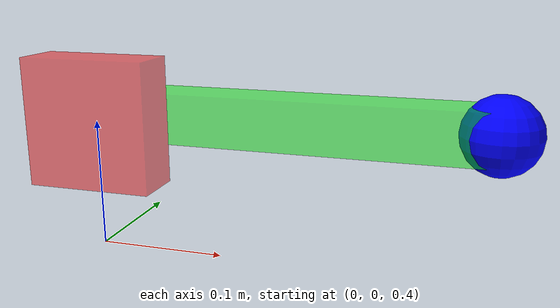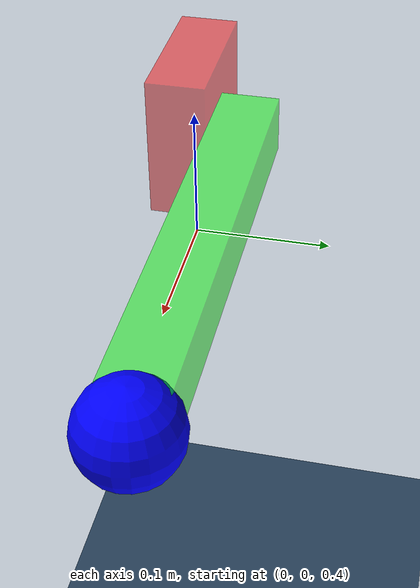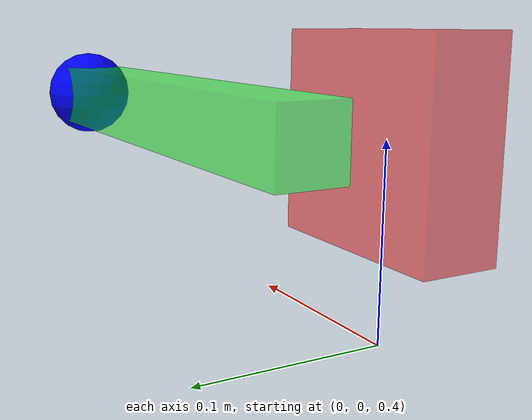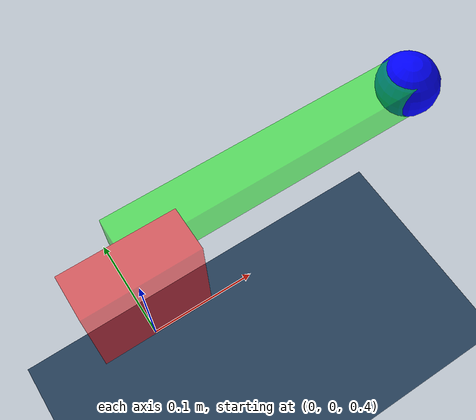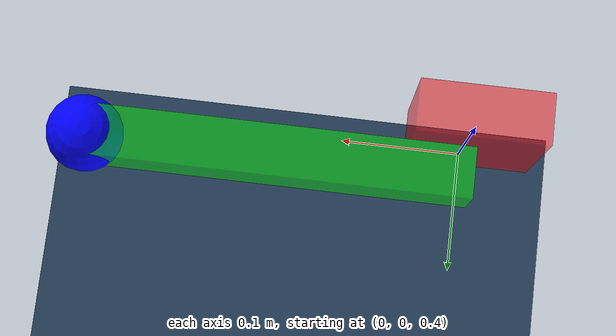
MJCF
<mujoco model="simple_sea_test">
  <compiler angle="radian"/>
  <option timestep="0.002"/>
  <visual>
    <headlight diffuse="0.6 0.6 0.6" ambient="0.3 0.3 0.3" specular="0 0 0"/>
    <rgba haze="0.15 0.25 0.35 1"/>
    <global azimuth="0" elevation="-20"/>
  </visual>
  <asset>
    <texture type="skybox" builtin="gradient" rgb1="0.3 0.5 0.7" rgb2="0 0 0" width="512" height="3072"/>
    <texture type="2d" name="groundplane" builtin="checker" mark="edge" rgb1="0.2 0.3 0.4" rgb2="0.1 0.2 0.3"
      markrgb="0.8 0.8 0.8" width="300" height="300"/>
    <material name="groundplane" texture="groundplane" texuniform="true" texrepeat="5 5" reflectance="0.2"/>
  </asset>
  <worldbody>
    <light pos="0 0 1.5" dir="0 0 -1" directional="true"/>
    <geom name="floor" size="0 0 0.05" type="plane" material="groundplane"/>
    <body name="motor_side" pos="0 0 0.5">
      <joint name="theta" type="hinge" axis="0 1 0" actuatorfrcrange="-6.28 6.28" damping="1.0" range="-6.28 6.28"/>
      <geom type="box" size="0.05 0.02 0.05" rgba="1 0 0 0.5"/>
      <body name="link_side" pos="0 0.04 0">
        <joint name="q" type="hinge" axis="0 1 0" stiffness="1.0" damping="1.0" range="-6.28 6.28"/>
        <geom type="box" size="0.15 0.02 0.02" pos="0.15 0 0" rgba="0 1 0 0.5"/>
        <body name="end_effector" pos="0.3 0 0">
          <geom type="sphere" size="0.03" rgba="0 0 1 1"/>
        </body>
      </body>
    </body>
  </worldbody>
  <actuator>
    <position name="motor" joint="theta" ctrlrange="-5 5" gear="1"/>
  </actuator>
</mujoco>
